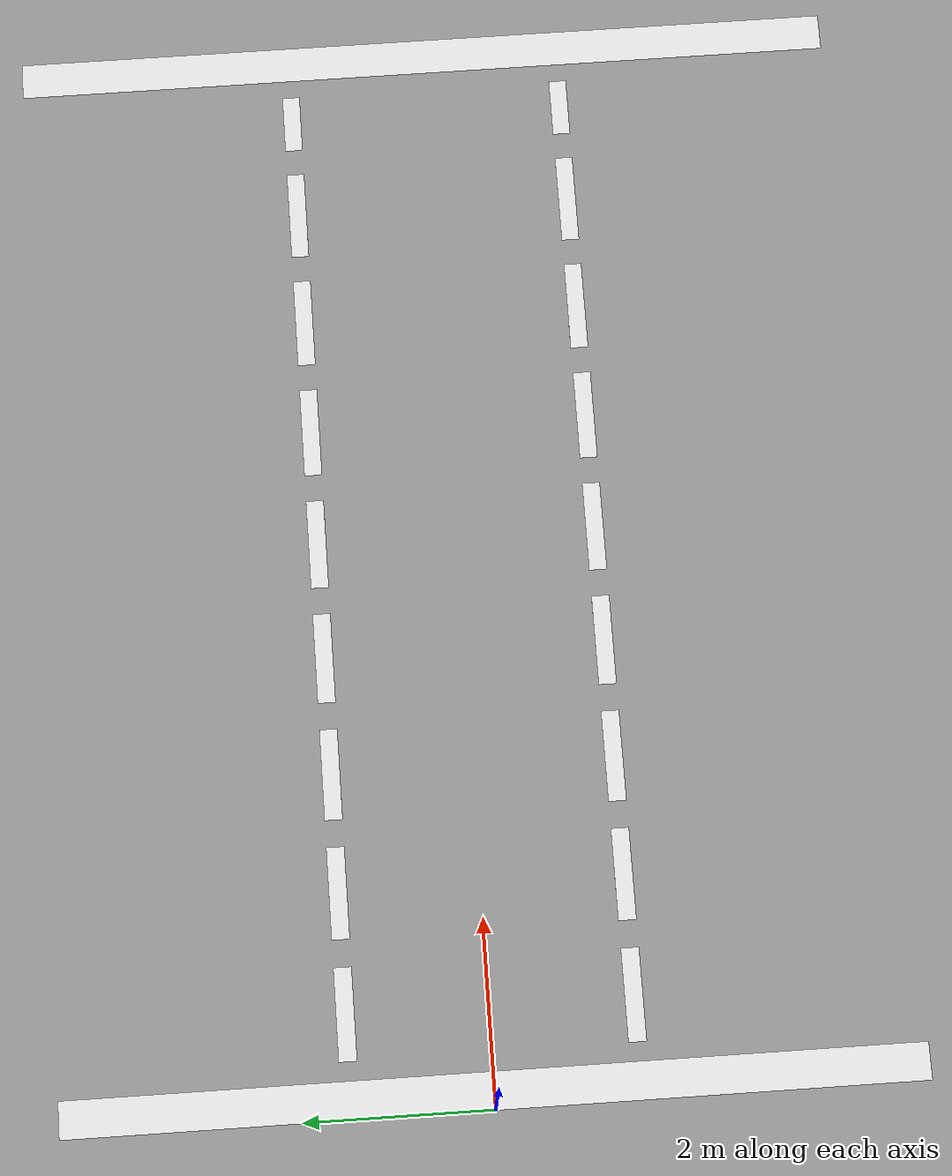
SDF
<sdf version="1.4">
 <world name="default">
  <light name="sun" type="directional">
   <pose>0 0 10 0 -0 0</pose>
   <diffuse>0.8 0.8 0.8 1</diffuse>
   <specular>0.2 0.2 0.2 1</specular>
   <attenuation>
    <range>1000</range>
    <constant>0.9</constant>
    <linear>0.01</linear>
    <quadratic>0.001</quadratic>
   </attenuation>
   <direction>0.5 0.1 -0.9</direction>
  </light>
  <model name="gutter_1">
   <pose>0.2 0 0.001 0 0 0</pose>
   <static>1</static>
   <link name="link">
    <inertial>
     <mass>1</mass>
     <inertia>
      <ixx>0.166667</ixx>
      <ixy>0</ixy>
      <ixz>0</ixz>
      <iyy>0.166667</iyy>
      <iyz>0</iyz>
      <izz>0.166667</izz>
     </inertia>
    </inertial>
    <collision name="collision"><geometry><box><size>0.4 9 0.001</size></box></geometry></collision>
    <visual name="visual">
     <geometry><box><size>0.4 9 0.001</size></box></geometry>
     <material>
      <script><name>Gazebo/White</name><uri>file://media/materials/scripts/gazebo.material</uri></script>
     </material>
    </visual>
   </link>
  </model>
  <model name="gutter_2">
   <static>1</static>
   <pose>11.8 0 0.001 0 0 0</pose>
   <link name="link">
    <inertial>
     <mass>1</mass>
     <inertia>
      <ixx>0.166667</ixx>
      <ixy>0</ixy>
      <ixz>0</ixz>
      <iyy>0.166667</iyy>
      <iyz>0</iyz>
      <izz>0.166667</izz>
     </inertia>
    </inertial>
    <collision name="collision"><geometry><box><size>0.4 9 0.001</size></box></geometry></collision>
    <visual name="visual">
     <geometry><box><size>0.4 9 0.001</size></box></geometry>
     <material>
      <script><name>Gazebo/White</name><uri>file://media/materials/scripts/gazebo.material</uri></script>
     </material>
    </visual>
   </link>
  </model>
  <model name="line_marker_1">
   <static>1</static>
   <pose>1.09 -1.5 0 0 0 0</pose>
   <link name="link">
    <inertial>
     <mass>1</mass>
     <inertia>
      <ixx>0.166667</ixx>
      <ixy>0</ixy>
      <ixz>0</ixz>
      <iyy>0.166667</iyy>
      <iyz>0</iyz>
      <izz>0.166667</izz>
     </inertia>
    </inertial>
    <collision name="collision"><geometry><box><size>0.98 0.19 0.001</size></box></geometry></collision>
    <visual name="visual">
     <geometry><box><size>0.98 0.19 0.001</size></box></geometry>
     <material>
      <script><name>Gazebo/White</name><uri>file://media/materials/scripts/gazebo.material</uri></script>
     </material>
    </visual>
   </link>
  </model>
  <model name="line_marker_2">
   <static>1</static>
   <pose>1.09 1.5 0 0 0 0</pose>
   <link name="link">
    <inertial>
     <mass>1</mass>
     <inertia>
      <ixx>0.166667</ixx>
      <ixy>0</ixy>
      <ixz>0</ixz>
      <iyy>0.166667</iyy>
      <iyz>0</iyz>
      <izz>0.166667</izz>
     </inertia>
    </inertial>
    <collision name="collision"><geometry><box><size>0.98 0.19 0.001</size></box></geometry></collision>
    <visual name="visual">
     <geometry><box><size>0.98 0.19 0.001</size></box></geometry>
     <material>
      <script><name>Gazebo/White</name><uri>file://media/materials/scripts/gazebo.material</uri></script>
     </material>
    </visual>
   </link>
  </model>
  <model name="line_marker_3">
   <static>1</static>
   <pose>2.36 -1.5 0 0 0 0</pose>
   <link name="link">
    <inertial>
     <mass>1</mass>
     <inertia>
      <ixx>0.166667</ixx>
      <ixy>0</ixy>
      <ixz>0</ixz>
      <iyy>0.166667</iyy>
      <iyz>0</iyz>
      <izz>0.166667</izz>
     </inertia>
    </inertial>
    <collision name="collision"><geometry><box><size>0.98 0.19 0.001</size></box></geometry></collision>
    <visual name="visual">
     <geometry><box><size>0.98 0.19 0.001</size></box></geometry>
     <material>
      <script><name>Gazebo/White</name><uri>file://media/materials/scripts/gazebo.material</uri></script>
     </material>
    </visual>
   </link>
  </model>
  <model name="line_marker_4">
   <static>1</static>
   <pose>2.36 1.5 0 0 0 0</pose>
   <link name="link">
    <inertial>
     <mass>1</mass>
     <inertia>
      <ixx>0.166667</ixx>
      <ixy>0</ixy>
      <ixz>0</ixz>
      <iyy>0.166667</iyy>
      <iyz>0</iyz>
      <izz>0.166667</izz>
     </inertia>
    </inertial>
    <collision name="collision"><geometry><box><size>0.98 0.19 0.001</size></box></geometry></collision>
    <visual name="visual">
     <geometry><box><size>0.98 0.19 0.001</size></box></geometry>
     <material>
      <script><name>Gazebo/White</name><uri>file://media/materials/scripts/gazebo.material</uri></script>
     </material>
    </visual>
   </link>
  </model>
  <model name="line_marker_5">
   <static>1</static>
   <pose>3.63 -1.5 0 0 0 0</pose>
   <link name="link">
    <inertial>
     <mass>1</mass>
     <inertia>
      <ixx>0.166667</ixx>
      <ixy>0</ixy>
      <ixz>0</ixz>
      <iyy>0.166667</iyy>
      <iyz>0</iyz>
      <izz>0.166667</izz>
     </inertia>
    </inertial>
    <collision name="collision"><geometry><box><size>0.98 0.19 0.001</size></box></geometry></collision>
    <visual name="visual">
     <geometry><box><size>0.98 0.19 0.001</size></box></geometry>
     <material>
      <script><name>Gazebo/White</name><uri>file://media/materials/scripts/gazebo.material</uri></script>
     </material>
    </visual>
   </link>
  </model>
  <model name="line_marker_6">
   <static>1</static>
   <pose>3.63 1.5 0 0 0 0</pose>
   <link name="link">
    <inertial>
     <mass>1</mass>
     <inertia>
      <ixx>0.166667</ixx>
      <ixy>0</ixy>
      <ixz>0</ixz>
      <iyy>0.166667</iyy>
      <iyz>0</iyz>
      <izz>0.166667</izz>
     </inertia>
    </inertial>
    <collision name="collision"><geometry><box><size>0.98 0.19 0.001</size></box></geometry></collision>
    <visual name="visual">
     <geometry><box><size>0.98 0.19 0.001</size></box></geometry>
     <material>
      <script><name>Gazebo/White</name><uri>file://media/materials/scripts/gazebo.material</uri></script>
     </material>
    </visual>
   </link>
  </model>
  <model name="line_marker_7">
   <static>1</static>
   <pose>4.9 -1.5 0 0 0 0</pose>
   <link name="link">
    <inertial>
     <mass>1</mass>
     <inertia>
      <ixx>0.166667</ixx>
      <ixy>0</ixy>
      <ixz>0</ixz>
      <iyy>0.166667</iyy>
      <iyz>0</iyz>
      <izz>0.166667</izz>
     </inertia>
    </inertial>
    <collision name="collision"><geometry><box><size>0.98 0.19 0.001</size></box></geometry></collision>
    <visual name="visual">
     <geometry><box><size>0.98 0.19 0.001</size></box></geometry>
     <material>
      <script><name>Gazebo/White</name><uri>file://media/materials/scripts/gazebo.material</uri></script>
     </material>
    </visual>
   </link>
  </model>
  <model name="line_marker_8">
   <static>1</static>
   <pose>4.9 1.5 0 0 0 0</pose>
   <link name="link">
    <inertial>
     <mass>1</mass>
     <inertia>
      <ixx>0.166667</ixx>
      <ixy>0</ixy>
      <ixz>0</ixz>
      <iyy>0.166667</iyy>
      <iyz>0</iyz>
      <izz>0.166667</izz>
     </inertia>
    </inertial>
    <collision name="collision"><geometry><box><size>0.98 0.19 0.001</size></box></geometry></collision>
    <visual name="visual">
     <geometry><box><size>0.98 0.19 0.001</size></box></geometry>
     <material>
      <script><name>Gazebo/White</name><uri>file://media/materials/scripts/gazebo.material</uri></script>
     </material>
    </visual>
   </link>
  </model>
  <model name="line_marker_9">
   <static>1</static>
   <pose>6.17 -1.5 0 0 0 0</pose>
   <link name="link">
    <inertial>
     <mass>1</mass>
     <inertia>
      <ixx>0.166667</ixx>
      <ixy>0</ixy>
      <ixz>0</ixz>
      <iyy>0.166667</iyy>
      <iyz>0</iyz>
      <izz>0.166667</izz>
     </inertia>
    </inertial>
    <collision name="collision"><geometry><box><size>0.98 0.19 0.001</size></box></geometry></collision>
    <visual name="visual">
     <geometry><box><size>0.98 0.19 0.001</size></box></geometry>
     <material>
      <script><name>Gazebo/White</name><uri>file://media/materials/scripts/gazebo.material</uri></script>
     </material>
    </visual>
   </link>
  </model>
  <model name="line_marker_10">
   <static>1</static>
   <pose>6.17 1.5 0 0 0 0</pose>
   <link name="link">
    <inertial>
     <mass>1</mass>
     <inertia>
      <ixx>0.166667</ixx>
      <ixy>0</ixy>
      <ixz>0</ixz>
      <iyy>0.166667</iyy>
      <iyz>0</iyz>
      <izz>0.166667</izz>
     </inertia>
    </inertial>
    <collision name="collision"><geometry><box><size>0.98 0.19 0.001</size></box></geometry></collision>
    <visual name="visual">
     <geometry><box><size>0.98 0.19 0.001</size></box></geometry>
     <material>
      <script><name>Gazebo/White</name><uri>file://media/materials/scripts/gazebo.material</uri></script>
     </material>
    </visual>
   </link>
  </model>
  <model name="line_marker_11">
   <static>1</static>
   <pose>7.44 -1.5 0 0 0 0</pose>
   <link name="link">
    <inertial>
     <mass>1</mass>
     <inertia>
      <ixx>0.166667</ixx>
      <ixy>0</ixy>
      <ixz>0</ixz>
      <iyy>0.166667</iyy>
      <iyz>0</iyz>
      <izz>0.166667</izz>
     </inertia>
    </inertial>
    <collision name="collision"><geometry><box><size>0.98 0.19 0.001</size></box></geometry></collision>
    <visual name="visual">
     <geometry><box><size>0.98 0.19 0.001</size></box></geometry>
     <material>
      <script><name>Gazebo/White</name><uri>file://media/materials/scripts/gazebo.material</uri></script>
     </material>
    </visual>
   </link>
  </model>
  <model name="line_marker_12">
   <static>1</static>
   <pose>7.44 1.5 0 0 0 0</pose>
   <link name="link">
    <inertial>
     <mass>1</mass>
     <inertia>
      <ixx>0.166667</ixx>
      <ixy>0</ixy>
      <ixz>0</ixz>
      <iyy>0.166667</iyy>
      <iyz>0</iyz>
      <izz>0.166667</izz>
     </inertia>
    </inertial>
    <collision name="collision"><geometry><box><size>0.98 0.19 0.001</size></box></geometry></collision>
    <visual name="visual">
     <geometry><box><size>0.98 0.19 0.001</size></box></geometry>
     <material>
      <script><name>Gazebo/White</name><uri>file://media/materials/scripts/gazebo.material</uri></script>
     </material>
    </visual>
   </link>
  </model>
  <model name="line_marker_13">
   <static>1</static>
   <pose>8.71 -1.5 0 0 0 0</pose>
   <link name="link">
    <inertial>
     <mass>1</mass>
     <inertia>
      <ixx>0.166667</ixx>
      <ixy>0</ixy>
      <ixz>0</ixz>
      <iyy>0.166667</iyy>
      <iyz>0</iyz>
      <izz>0.166667</izz>
     </inertia>
    </inertial>
    <collision name="collision"><geometry><box><size>0.98 0.19 0.001</size></box></geometry></collision>
    <visual name="visual">
     <geometry><box><size>0.98 0.19 0.001</size></box></geometry>
     <material>
      <script><name>Gazebo/White</name><uri>file://media/materials/scripts/gazebo.material</uri></script>
     </material>
    </visual>
   </link>
  </model>
  <model name="line_marker_14">
   <static>1</static>
   <pose>8.71 1.5 0 0 0 0</pose>
   <link name="link">
    <inertial>
     <mass>1</mass>
     <inertia>
      <ixx>0.166667</ixx>
      <ixy>0</ixy>
      <ixz>0</ixz>
      <iyy>0.166667</iyy>
      <iyz>0</iyz>
      <izz>0.166667</izz>
     </inertia>
    </inertial>
    <collision name="collision"><geometry><box><size>0.98 0.19 0.001</size></box></geometry></collision>
    <visual name="visual">
     <geometry><box><size>0.98 0.19 0.001</size></box></geometry>
     <material>
      <script><name>Gazebo/White</name><uri>file://media/materials/scripts/gazebo.material</uri></script>
     </material>
    </visual>
   </link>
  </model>
  <model name="line_marker_15">
   <static>1</static>
   <pose>9.98 -1.5 0 0 0 0</pose>
   <link name="link">
    <inertial>
     <mass>1</mass>
     <inertia>
      <ixx>0.166667</ixx>
      <ixy>0</ixy>
      <ixz>0</ixz>
      <iyy>0.166667</iyy>
      <iyz>0</iyz>
      <izz>0.166667</izz>
     </inertia>
    </inertial>
    <collision name="collision"><geometry><box><size>0.98 0.19 0.001</size></box></geometry></collision>
    <visual name="visual">
     <geometry><box><size>0.98 0.19 0.001</size></box></geometry>
     <material>
      <script><name>Gazebo/White</name><uri>file://media/materials/scripts/gazebo.material</uri></script>
     </material>
    </visual>
   </link>
  </model>
  <model name="line_marker_16">
   <static>1</static>
   <pose>9.98 1.5 0 0 0 0</pose>
   <link name="link">
    <inertial>
     <mass>1</mass>
     <inertia>
      <ixx>0.166667</ixx>
      <ixy>0</ixy>
      <ixz>0</ixz>
      <iyy>0.166667</iyy>
      <iyz>0</iyz>
      <izz>0.166667</izz>
     </inertia>
    </inertial>
    <collision name="collision"><geometry><box><size>0.98 0.19 0.001</size></box></geometry></collision>
    <visual name="visual">
     <geometry><box><size>0.98 0.19 0.001</size></box></geometry>
     <material>
      <script><name>Gazebo/White</name><uri>file://media/materials/scripts/gazebo.material</uri></script>
     </material>
    </visual>
   </link>
  </model>
  <model name="line_marker_17">
   <static>1</static>
   <pose>11.08 -1.5 0 0 0 0</pose>
   <link name="link">
    <inertial>
     <mass>1</mass>
     <inertia>
      <ixx>0.166667</ixx>
      <ixy>0</ixy>
      <ixz>0</ixz>
      <iyy>0.166667</iyy>
      <iyz>0</iyz>
      <izz>0.166667</izz>
     </inertia>
    </inertial>
    <collision name="collision"><geometry><box><size>0.64 0.19 0.001</size></box></geometry></collision>
    <visual name="visual">
     <geometry><box><size>0.64 0.19 0.001</size></box></geometry>
     <material>
      <script><name>Gazebo/White</name><uri>file://media/materials/scripts/gazebo.material</uri></script>
     </material>
    </visual>
   </link>
  </model>
  <model name="line_marker_18">
   <static>1</static>
   <pose>11.08 1.5 0 0 0 0</pose>
   <link name="link">
    <inertial>
     <mass>1</mass>
     <inertia>
      <ixx>0.166667</ixx>
      <ixy>0</ixy>
      <ixz>0</ixz>
      <iyy>0.166667</iyy>
      <iyz>0</iyz>
      <izz>0.166667</izz>
     </inertia>
    </inertial>
    <collision name="collision"><geometry><box><size>0.64 0.19 0.001</size></box></geometry></collision>
    <visual name="visual">
     <geometry><box><size>0.64 0.19 0.001</size></box></geometry>
     <material>
      <script><name>Gazebo/White</name><uri>file://media/materials/scripts/gazebo.material</uri></script>
     </material>
    </visual>
   </link>
  </model>
  <scene><ambient>0.4 0.4 0.4 1</ambient><background>0.7 0.7 0.7 1</background><shadows>1</shadows></scene>
  <physics type="ode">
   <max_step_size>0.01</max_step_size>
   <real_time_factor>1</real_time_factor>
   <real_time_update_rate>100</real_time_update_rate>
   <gravity>0 0 -9.8</gravity>
  </physics>
  <model name="ground_plane_0">
   <static>1</static>
   <link name="link">
    <collision name="collision">
     <geometry><plane><normal>0 0 1</normal><size>100 100</size></plane></geometry>
     <surface><friction><ode><mu>100</mu><mu2>50</mu2></ode></friction></surface>
    </collision>
    <visual name="visual">
     <cast_shadows>0</cast_shadows>
     <geometry><plane><normal>0 0 1</normal><size>100 100</size></plane></geometry>
     <material>
      <script><uri>file://media/materials/scripts/gazebo.material</uri><name>Gazebo/Grey</name></script>
     </material>
    </visual>
    <velocity_decay><linear>0</linear><angular>0</angular></velocity_decay>
   </link>
  </model>
 </world>
</sdf>
